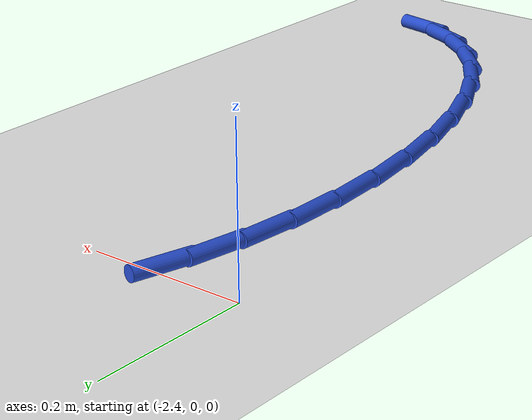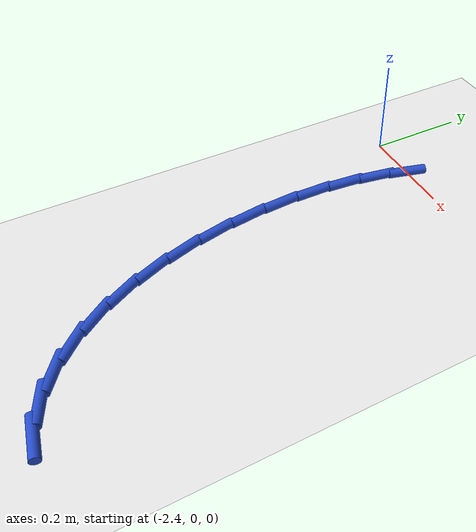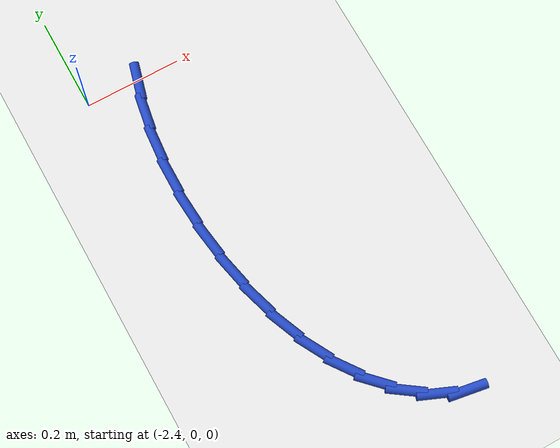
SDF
<sdf version="1.6">
 <world name="default">
  <model name="ground_plane">
   <static>1</static>
   <link name="link">
    <collision name="collision">
     <geometry><plane><normal>0 0 1</normal><size>100 100</size></plane></geometry>
     <surface><friction><ode><mu>100</mu><mu2>50</mu2></ode></friction></surface>
    </collision>
    <visual name="visual">
     <cast_shadows>0</cast_shadows>
     <geometry><plane><normal>0 0 1</normal><size>100 100</size></plane></geometry>
     <material>
      <script><uri>file://media/materials/scripts/gazebo.material</uri><name>Gazebo/WhiteGlow</name></script>
     </material>
    </visual>
   </link>
  </model>
  <model name="line">
   <link name="link_61">
    <pose>-2.290406709023154 -0.005036132832738208 0.01 0 1.57 1.303775751451088</pose>
    <collision name="collision">
     <geometry><cylinder><radius>0.01</radius><length>0.08</length></cylinder></geometry>
    </collision>
    <visual name="visual">
     <material>
      <script><name>Gazebo/Blue</name><uri>file://media/materials/scripts/gazebo.material</uri></script>
     </material>
     <geometry><cylinder><radius>0.01</radius><length>0.08</length></cylinder></geometry>
    </visual>
   </link>
   <link name="link_62">
    <pose>-2.3082253553023655 -0.07017392136696458 0.01 0 1.57 1.3996268010947477</pose>
    <collision name="collision">
     <geometry><cylinder><radius>0.01</radius><length>0.08</length></cylinder></geometry>
    </collision>
    <visual name="visual">
     <material>
      <script><name>Gazebo/Blue</name><uri>file://media/materials/scripts/gazebo.material</uri></script>
     </material>
     <geometry><cylinder><radius>0.01</radius><length>0.08</length></cylinder></geometry>
    </visual>
   </link>
   <link name="link_63">
    <pose>-2.3202917868277675 -0.1399781451694075 0.01 0 1.57 1.4839669832435067</pose>
    <collision name="collision">
     <geometry><cylinder><radius>0.01</radius><length>0.08</length></cylinder></geometry>
    </collision>
    <visual name="visual">
     <material>
      <script><name>Gazebo/Blue</name><uri>file://media/materials/scripts/gazebo.material</uri></script>
     </material>
     <geometry><cylinder><radius>0.01</radius><length>0.08</length></cylinder></geometry>
    </visual>
   </link>
   <link name="link_64">
    <pose>-2.3266584302571656 -0.21311742085896018 0.01 0 1.57 1.5612244364246912</pose>
    <collision name="collision">
     <geometry><cylinder><radius>0.01</radius><length>0.08</length></cylinder></geometry>
    </collision>
    <visual name="visual">
     <material>
      <script><name>Gazebo/Blue</name><uri>file://media/materials/scripts/gazebo.material</uri></script>
     </material>
     <geometry><cylinder><radius>0.01</radius><length>0.08</length></cylinder></geometry>
    </visual>
   </link>
   <link name="link_65">
    <pose>-2.3273777122483663 -0.2882603650545189 0.01 0 1.57 -1.5065750879435509</pose>
    <collision name="collision">
     <geometry><cylinder><radius>0.01</radius><length>0.08</length></cylinder></geometry>
    </collision>
    <visual name="visual">
     <material>
      <script><name>Gazebo/Blue</name><uri>file://media/materials/scripts/gazebo.material</uri></script>
     </material>
     <geometry><cylinder><radius>0.01</radius><length>0.08</length></cylinder></geometry>
    </visual>
   </link>
   <link name="link_66">
    <pose>-2.3225020594591754 -0.36407559437497994 0.01 0 1.57 -1.4330538776535797</pose>
    <collision name="collision">
     <geometry><cylinder><radius>0.01</radius><length>0.08</length></cylinder></geometry>
    </collision>
    <visual name="visual">
     <material>
      <script><name>Gazebo/Blue</name><uri>file://media/materials/scripts/gazebo.material</uri></script>
     </material>
     <geometry><cylinder><radius>0.01</radius><length>0.08</length></cylinder></geometry>
    </visual>
   </link>
   <link name="link_67">
    <pose>-2.312083898547398 -0.4392317254392361 0.01 0 1.57 -1.356700844532721</pose>
    <collision name="collision">
     <geometry><cylinder><radius>0.01</radius><length>0.08</length></cylinder></geometry>
    </collision>
    <visual name="visual">
     <material>
      <script><name>Gazebo/Blue</name><uri>file://media/materials/scripts/gazebo.material</uri></script>
     </material>
     <geometry><cylinder><radius>0.01</radius><length>0.08</length></cylinder></geometry>
    </visual>
   </link>
   <link name="link_68">
    <pose>-2.2961756561708424 -0.5123973748661841 0.01 0 1.57 -1.274188437379727</pose>
    <collision name="collision">
     <geometry><cylinder><radius>0.01</radius><length>0.08</length></cylinder></geometry>
    </collision>
    <visual name="visual">
     <material>
      <script><name>Gazebo/Blue</name><uri>file://media/materials/scripts/gazebo.material</uri></script>
     </material>
     <geometry><cylinder><radius>0.01</radius><length>0.08</length></cylinder></geometry>
    </visual>
   </link>
   <link name="link_69">
    <pose>-2.274829758987314 -0.5822411592747189 0.01 0 1.57 -1.1816596268327257</pose>
    <collision name="collision">
     <geometry><cylinder><radius>0.01</radius><length>0.08</length></cylinder></geometry>
    </collision>
    <visual name="visual">
     <material>
      <script><name>Gazebo/Blue</name><uri>file://media/materials/scripts/gazebo.material</uri></script>
     </material>
     <geometry><cylinder><radius>0.01</radius><length>0.08</length></cylinder></geometry>
    </visual>
   </link>
   <link name="link_70">
    <pose>-2.2480986336546174 -0.6474316952837365 0.01 0 1.57 -1.0744511189905044</pose>
    <collision name="collision">
     <geometry><cylinder><radius>0.01</radius><length>0.08</length></cylinder></geometry>
    </collision>
    <visual name="visual">
     <material>
      <script><name>Gazebo/Blue</name><uri>file://media/materials/scripts/gazebo.material</uri></script>
     </material>
     <geometry><cylinder><radius>0.01</radius><length>0.08</length></cylinder></geometry>
    </visual>
   </link>
   <link name="link_71">
    <pose>-2.216034706830561 -0.7066375995121303 0.01 0 1.57 -0.9469816887905593</pose>
    <collision name="collision">
     <geometry><cylinder><radius>0.01</radius><length>0.08</length></cylinder></geometry>
    </collision>
    <visual name="visual">
     <material>
      <script><name>Gazebo/Blue</name><uri>file://media/materials/scripts/gazebo.material</uri></script>
     </material>
     <geometry><cylinder><radius>0.01</radius><length>0.08</length></cylinder></geometry>
    </visual>
   </link>
   <link name="link_72">
    <pose>-2.1786904051729494 -0.7585274885787967 0.01 0 1.57 -0.7932083258439637</pose>
    <collision name="collision">
     <geometry><cylinder><radius>0.01</radius><length>0.08</length></cylinder></geometry>
    </collision>
    <visual name="visual">
     <material>
      <script><name>Gazebo/Blue</name><uri>file://media/materials/scripts/gazebo.material</uri></script>
     </material>
     <geometry><cylinder><radius>0.01</radius><length>0.08</length></cylinder></geometry>
    </visual>
   </link>
   <link name="link_73">
    <pose>-2.136118155339589 -0.8017699791026308 0.01 0 1.57 -0.6084772560511766</pose>
    <collision name="collision">
     <geometry><cylinder><radius>0.01</radius><length>0.08</length></cylinder></geometry>
    </collision>
    <visual name="visual">
     <material>
      <script><name>Gazebo/Blue</name><uri>file://media/materials/scripts/gazebo.material</uri></script>
     </material>
     <geometry><cylinder><radius>0.01</radius><length>0.08</length></cylinder></geometry>
    </visual>
   </link>
   <link name="link_74">
    <pose>-2.0883703839882855 -0.8350336877025281 0.01 0 1.57 -0.39356592637376264</pose>
    <collision name="collision">
     <geometry><cylinder><radius>0.01</radius><length>0.08</length></cylinder></geometry>
    </collision>
    <visual name="visual">
     <material>
      <script><name>Gazebo/Blue</name><uri>file://media/materials/scripts/gazebo.material</uri></script>
     </material>
     <geometry><cylinder><radius>0.01</radius><length>0.08</length></cylinder></geometry>
    </visual>
   </link>
   <link name="link_75">
    <pose>-2.035499517776846 -0.8569872309973829 0.01 0 1.57 -0.16247182002088198</pose>
    <collision name="collision">
     <geometry><cylinder><radius>0.01</radius><length>0.08</length></cylinder></geometry>
    </collision>
    <visual name="visual">
     <material>
      <script><name>Gazebo/Blue</name><uri>file://media/materials/scripts/gazebo.material</uri></script>
     </material>
     <geometry><cylinder><radius>0.01</radius><length>0.08</length></cylinder></geometry>
    </visual>
   </link>
  </model>
 </world>
</sdf>
